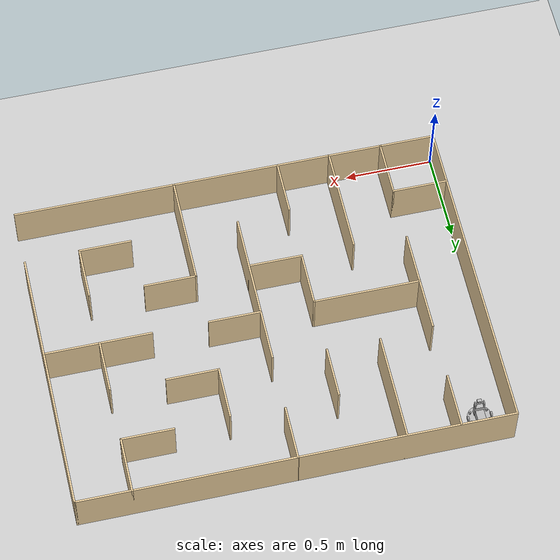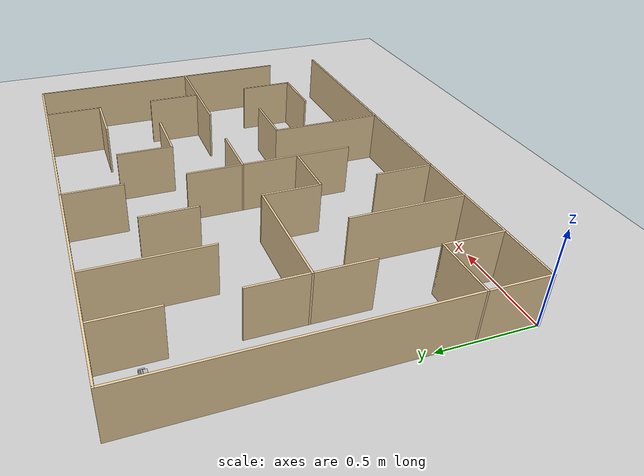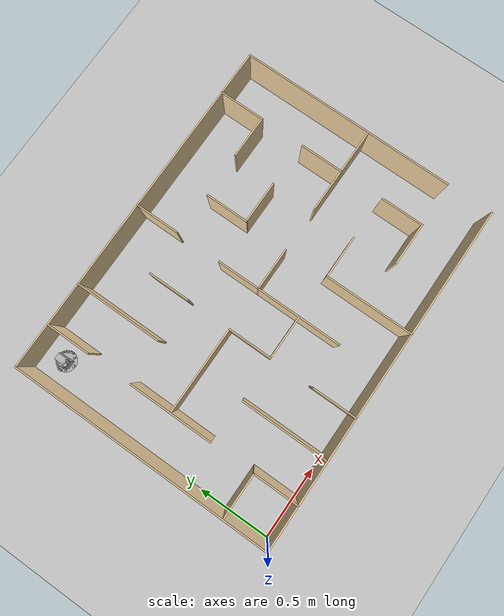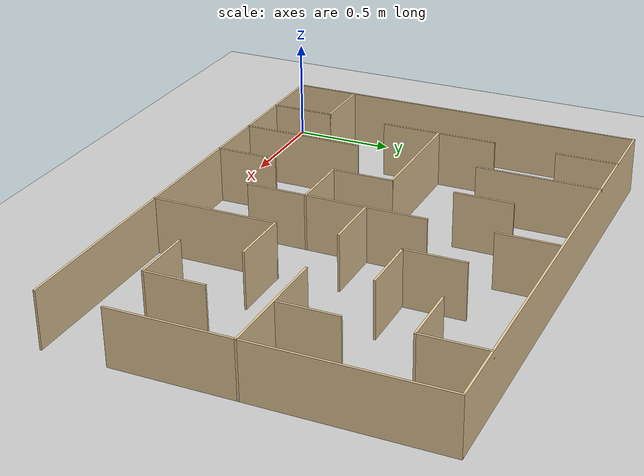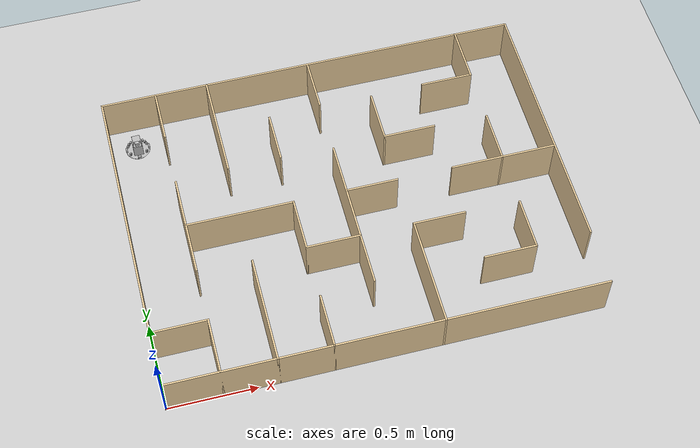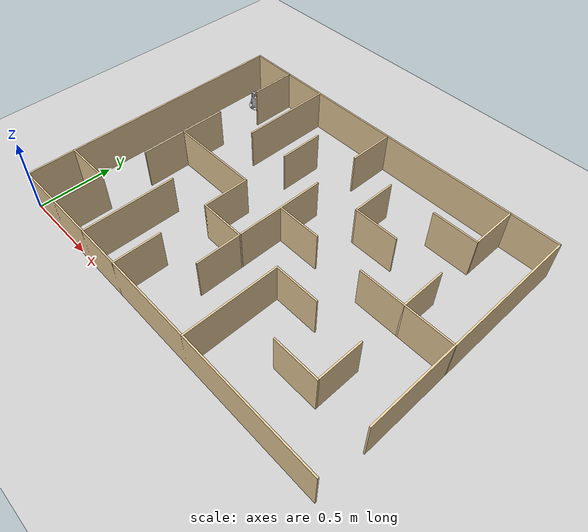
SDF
<?xml version="1.0" ?>
<sdf version="1.4">
  <world name="default">
    <scene>
      <ambient>0.5 0.5 0.5 1.0</ambient>
      <shadows>0</shadows>
    </scene>
    <include>
      <uri>model://ground_plane</uri>
    </include>
    <include>
      <uri>model://sun</uri>
    </include>
    <include>
      <uri>model://iti0201_robot</uri>
      <name>iti0201_robot</name>
      <pose>0.15 1.67 0 0 0 -1.57</pose> <!-- this is the robot's starting position, if you know where it should be, you can change this -->
    </include>

    <model name='newMap2'>
    <pose frame=''>1.21 0.91 0 0 -0 0</pose>
    <link name='Wall_101'>
      <collision name='Wall_101_Collision'>
        <geometry>
          <box>
            <size>1.51 0.01 0.28</size>
          </box>
        </geometry>
        <pose frame=''>0 0 0.14 0 -0 0</pose>
      </collision>
      <visual name='Wall_101_Visual'>
        <pose frame=''>0 0 0.14 0 -0 0</pose>
        <geometry>
          <box>
            <size>1.51 0.01 0.28</size>
          </box>
        </geometry>
        <material>
          <script>
            <uri>file://media/materials/scripts/gazebo.material</uri>
            <name>Gazebo/Grey</name>
          </script>
          <ambient>0.921569 0.807843 0.615686 1</ambient>
        </material>
        <meta>
          <layer>0</layer>
        </meta>
      </visual>
      <pose frame=''>1.21 0.16 0 0 0 -1.5708</pose>
    </link>
    <link name='Wall_106'>
      <collision name='Wall_106_Collision'>
        <geometry>
          <box>
            <size>2.43 0.01 0.28</size>
          </box>
        </geometry>
        <pose frame=''>0 0 0.14 0 -0 0</pose>
      </collision>
      <visual name='Wall_106_Visual'>
        <pose frame=''>0 0 0.14 0 -0 0</pose>
        <geometry>
          <box>
            <size>2.43 0.01 0.28</size>
          </box>
        </geometry>
        <material>
          <script>
            <uri>file://media/materials/scripts/gazebo.material</uri>
            <name>Gazebo/Grey</name>
          </script>
          <ambient>0.921569 0.807843 0.615686 1</ambient>
        </material>
        <meta>
          <layer>0</layer>
        </meta>
      </visual>
      <pose frame=''>0 -0.91 0 0 -0 0</pose>
    </link>
    <link name='Wall_108'>
      <collision name='Wall_108_Collision'>
        <geometry>
          <box>
            <size>1.83 0.01 0.28</size>
          </box>
        </geometry>
        <pose frame=''>0 0 0.14 0 -0 0</pose>
      </collision>
      <visual name='Wall_108_Visual'>
        <pose frame=''>0 0 0.14 0 -0 0</pose>
        <geometry>
          <box>
            <size>1.83 0.01 0.28</size>
          </box>
        </geometry>
        <material>
          <script>
            <uri>file://media/materials/scripts/gazebo.material</uri>
            <name>Gazebo/Grey</name>
          </script>
          <ambient>0.921569 0.807843 0.615686 1</ambient>
        </material>
        <meta>
          <layer>0</layer>
        </meta>
      </visual>
      <pose frame=''>-1.21 0 0 0 -0 1.5708</pose>
    </link>
    <link name='Wall_110'>
      <collision name='Wall_110_Collision'>
        <geometry>
          <box>
            <size>0.32 0.01 0.28</size>
          </box>
        </geometry>
        <pose frame=''>0 0 0.14 0 -0 0</pose>
      </collision>
      <visual name='Wall_110_Visual'>
        <pose frame=''>0 0 0.14 0 -0 0</pose>
        <geometry>
          <box>
            <size>0.32 0.01 0.28</size>
          </box>
        </geometry>
        <material>
          <script>
            <uri>file://media/materials/scripts/gazebo.material</uri>
            <name>Gazebo/Grey</name>
          </script>
          <ambient>0.921569 0.807843 0.615686 1</ambient>
        </material>
        <meta>
          <layer>0</layer>
        </meta>
      </visual>
      <pose frame=''>-1.055 -0.6 0 0 -0 0</pose>
    </link>
    <link name='Wall_112'>
      <collision name='Wall_112_Collision'>
        <geometry>
          <box>
            <size>0.3 0.01 0.28</size>
          </box>
        </geometry>
        <pose frame=''>0 0 0.14 0 -0 0</pose>
      </collision>
      <visual name='Wall_112_Visual'>
        <pose frame=''>0 0 0.14 0 -0 0</pose>
        <geometry>
          <box>
            <size>0.3 0.01 0.28</size>
          </box>
        </geometry>
        <material>
          <script>
            <uri>file://media/materials/scripts/gazebo.material</uri>
            <name>Gazebo/Grey</name>
          </script>
          <ambient>0.921569 0.807843 0.615686 1</ambient>
        </material>
        <meta>
          <layer>0</layer>
        </meta>
      </visual>
      <pose frame=''>0.445 -0.3 0 0 -0 0</pose>
    </link>
    <link name='Wall_114'>
      <collision name='Wall_114_Collision'>
        <geometry>
          <box>
            <size>0.3 0.01 0.28</size>
          </box>
        </geometry>
        <pose frame=''>0 0 0.14 0 -0 0</pose>
      </collision>
      <visual name='Wall_114_Visual'>
        <pose frame=''>0 0 0.14 0 -0 0</pose>
        <geometry>
          <box>
            <size>0.3 0.01 0.28</size>
          </box>
        </geometry>
        <material>
          <script>
            <uri>file://media/materials/scripts/gazebo.material</uri>
            <name>Gazebo/Grey</name>
          </script>
          <ambient>0.921569 0.807843 0.615686 1</ambient>
        </material>
        <meta>
          <layer>0</layer>
        </meta>
      </visual>
      <pose frame=''>0.145 0 0 0 -0 0</pose>
    </link>
    <link name='Wall_116'>
      <collision name='Wall_116_Collision'>
        <geometry>
          <box>
            <size>0.89 0.01 0.28</size>
          </box>
        </geometry>
        <pose frame=''>0 0 0.14 0 -0 0</pose>
      </collision>
      <visual name='Wall_116_Visual'>
        <pose frame=''>0 0 0.14 0 -0 0</pose>
        <geometry>
          <box>
            <size>0.89 0.01 0.28</size>
          </box>
        </geometry>
        <material>
          <script>
            <uri>file://media/materials/scripts/gazebo.material</uri>
            <name>Gazebo/Grey</name>
          </script>
          <ambient>0.921569 0.807843 0.615686 1</ambient>
        </material>
        <meta>
          <layer>0</layer>
        </meta>
      </visual>
      <pose frame=''>0 -0.15 0 0 0 -1.5708</pose>
    </link>
    <link name='Wall_118'>
      <collision name='Wall_118_Collision'>
        <geometry>
          <box>
            <size>0.31 0.01 0.28</size>
          </box>
        </geometry>
        <pose frame=''>0 0 0.14 0 -0 0</pose>
      </collision>
      <visual name='Wall_118_Visual'>
        <pose frame=''>0 0 0.14 0 -0 0</pose>
        <geometry>
          <box>
            <size>0.31 0.01 0.28</size>
          </box>
        </geometry>
        <material>
          <script>
            <uri>file://media/materials/scripts/gazebo.material</uri>
            <name>Gazebo/Grey</name>
          </script>
          <ambient>0.921569 0.807843 0.615686 1</ambient>
        </material>
        <meta>
          <layer>0</layer>
        </meta>
      </visual>
      <pose frame=''>-0.15 -0.3 0 0 -0 0</pose>
    </link>
    <link name='Wall_120'>
      <collision name='Wall_120_Collision'>
        <geometry>
          <box>
            <size>0.31 0.01 0.28</size>
          </box>
        </geometry>
        <pose frame=''>0 0 0.14 0 -0 0</pose>
      </collision>
      <visual name='Wall_120_Visual'>
        <pose frame=''>0 0 0.14 0 -0 0</pose>
        <geometry>
          <box>
            <size>0.31 0.01 0.28</size>
          </box>
        </geometry>
        <material>
          <script>
            <uri>file://media/materials/scripts/gazebo.material</uri>
            <name>Gazebo/Grey</name>
          </script>
          <ambient>0.921569 0.807843 0.615686 1</ambient>
        </material>
        <meta>
          <layer>0</layer>
        </meta>
      </visual>
      <pose frame=''>-0.3 -0.15 0 0 0 -1.5708</pose>
    </link>
    <link name='Wall_124'>
      <collision name='Wall_124_Collision'>
        <geometry>
          <box>
            <size>0.61 0.01 0.28</size>
          </box>
        </geometry>
        <pose frame=''>0 0 0.14 0 -0 0</pose>
      </collision>
      <visual name='Wall_124_Visual'>
        <pose frame=''>0 0 0.14 0 -0 0</pose>
        <geometry>
          <box>
            <size>0.61 0.01 0.28</size>
          </box>
        </geometry>
        <material>
          <script>
            <uri>file://media/materials/scripts/gazebo.material</uri>
            <name>Gazebo/Grey</name>
          </script>
          <ambient>0.921569 0.807843 0.615686 1</ambient>
        </material>
        <meta>
          <layer>0</layer>
        </meta>
      </visual>
      <pose frame=''>-0.6 0 0 0 -0 0</pose>
    </link>
    <link name='Wall_126'>
      <collision name='Wall_126_Collision'>
        <geometry>
          <box>
            <size>0.59 0.01 0.28</size>
          </box>
        </geometry>
        <pose frame=''>0 0 0.14 0 -0 0</pose>
      </collision>
      <visual name='Wall_126_Visual'>
        <pose frame=''>0 0 0.14 0 -0 0</pose>
        <geometry>
          <box>
            <size>0.59 0.01 0.28</size>
          </box>
        </geometry>
        <material>
          <script>
            <uri>file://media/materials/scripts/gazebo.material</uri>
            <name>Gazebo/Grey</name>
          </script>
          <ambient>0.921569 0.807843 0.615686 1</ambient>
        </material>
        <meta>
          <layer>0</layer>
        </meta>
      </visual>
      <pose frame=''>-0.9 0 0 0 0 -1.5708</pose>
    </link>
    <link name='Wall_60'>
      <collision name='Wall_60_Collision'>
        <geometry>
          <box>
            <size>0.3 0.01 0.28</size>
          </box>
        </geometry>
        <pose frame=''>0 0 0.14 0 -0 0</pose>
      </collision>
      <visual name='Wall_60_Visual'>
        <pose frame=''>0 0 0.14 0 -0 0</pose>
        <geometry>
          <box>
            <size>0.3 0.01 0.28</size>
          </box>
        </geometry>
        <material>
          <script>
            <uri>file://media/materials/scripts/gazebo.material</uri>
            <name>Gazebo/Grey</name>
          </script>
          <ambient>0.921569 0.807843 0.615686 1</ambient>
        </material>
        <meta>
          <layer>0</layer>
        </meta>
      </visual>
      <pose frame=''>0.755 -0.6 0 0 -0 3.14159</pose>
    </link>
    <link name='Wall_64'>
      <collision name='Wall_64_Collision'>
        <geometry>
          <box>
            <size>0.3 0.01 0.28</size>
          </box>
        </geometry>
        <pose frame=''>0 0 0.14 0 -0 0</pose>
      </collision>
      <visual name='Wall_64_Visual'>
        <pose frame=''>0 0 0.14 0 -0 0</pose>
        <geometry>
          <box>
            <size>0.3 0.01 0.28</size>
          </box>
        </geometry>
        <material>
          <script>
            <uri>file://media/materials/scripts/gazebo.material</uri>
            <name>Gazebo/Grey</name>
          </script>
          <ambient>0.921569 0.807843 0.615686 1</ambient>
        </material>
        <meta>
          <layer>0</layer>
        </meta>
      </visual>
      <pose frame=''>0.9 -0.455 0 0 0 -1.5708</pose>
    </link>
    <link name='Wall_66'>
      <collision name='Wall_66_Collision'>
        <geometry>
          <box>
            <size>0.3 0.01 0.28</size>
          </box>
        </geometry>
        <pose frame=''>0 0 0.14 0 -0 0</pose>
      </collision>
      <visual name='Wall_66_Visual'>
        <pose frame=''>0 0 0.14 0 -0 0</pose>
        <geometry>
          <box>
            <size>0.3 0.01 0.28</size>
          </box>
        </geometry>
        <material>
          <script>
            <uri>file://media/materials/scripts/gazebo.material</uri>
            <name>Gazebo/Grey</name>
          </script>
          <ambient>0.921569 0.807843 0.615686 1</ambient>
        </material>
        <meta>
          <layer>0</layer>
        </meta>
      </visual>
      <pose frame=''>0.9 0.145 0 0 0 -1.5708</pose>
    </link>
    <link name='Wall_68'>
      <collision name='Wall_68_Collision'>
        <geometry>
          <box>
            <size>0.61 0.01 0.28</size>
          </box>
        </geometry>
        <pose frame=''>0 0 0.14 0 -0 0</pose>
      </collision>
      <visual name='Wall_68_Visual'>
        <pose frame=''>0 0 0.14 0 -0 0</pose>
        <geometry>
          <box>
            <size>0.61 0.01 0.28</size>
          </box>
        </geometry>
        <material>
          <script>
            <uri>file://media/materials/scripts/gazebo.material</uri>
            <name>Gazebo/Grey</name>
          </script>
          <ambient>0.921569 0.807843 0.615686 1</ambient>
        </material>
        <meta>
          <layer>0</layer>
        </meta>
      </visual>
      <pose frame=''>0.91 0 0 0 -0 0</pose>
    </link>
    <link name='Wall_71'>
      <collision name='Wall_71_Collision'>
        <geometry>
          <box>
            <size>0.3 0.01 0.28</size>
          </box>
        </geometry>
        <pose frame=''>0 0 0.14 0 -0 0</pose>
      </collision>
      <visual name='Wall_71_Visual'>
        <pose frame=''>0 0 0.14 0 -0 0</pose>
        <geometry>
          <box>
            <size>0.3 0.01 0.28</size>
          </box>
        </geometry>
        <material>
          <script>
            <uri>file://media/materials/scripts/gazebo.material</uri>
            <name>Gazebo/Grey</name>
          </script>
          <ambient>0.921569 0.807843 0.615686 1</ambient>
        </material>
        <meta>
          <layer>0</layer>
        </meta>
      </visual>
      <pose frame=''>0.445 0.3 0 0 -0 0</pose>
    </link>
    <link name='Wall_75'>
      <collision name='Wall_75_Collision'>
        <geometry>
          <box>
            <size>0.3 0.01 0.28</size>
          </box>
        </geometry>
        <pose frame=''>0 0 0.14 0 -0 0</pose>
      </collision>
      <visual name='Wall_75_Visual'>
        <pose frame=''>0 0 0.14 0 -0 0</pose>
        <geometry>
          <box>
            <size>0.3 0.01 0.28</size>
          </box>
        </geometry>
        <material>
          <script>
            <uri>file://media/materials/scripts/gazebo.material</uri>
            <name>Gazebo/Grey</name>
          </script>
          <ambient>0.921569 0.807843 0.615686 1</ambient>
        </material>
        <meta>
          <layer>0</layer>
        </meta>
      </visual>
      <pose frame=''>0.3 0.445 0 0 0 -1.5708</pose>
    </link>
    <link name='Wall_78'>
      <collision name='Wall_78_Collision'>
        <geometry>
          <box>
            <size>0.3 0.01 0.28</size>
          </box>
        </geometry>
        <pose frame=''>0 0 0.14 0 -0 0</pose>
      </collision>
      <visual name='Wall_78_Visual'>
        <pose frame=''>0 0 0.14 0 -0 0</pose>
        <geometry>
          <box>
            <size>0.3 0.01 0.28</size>
          </box>
        </geometry>
        <material>
          <script>
            <uri>file://media/materials/scripts/gazebo.material</uri>
            <name>Gazebo/Grey</name>
          </script>
          <ambient>0.921569 0.807843 0.615686 1</ambient>
        </material>
        <meta>
          <layer>0</layer>
        </meta>
      </visual>
      <pose frame=''>0.755 0.6 0 0 -0 3.14159</pose>
    </link>
    <link name='Wall_80'>
      <collision name='Wall_80_Collision'>
        <geometry>
          <box>
            <size>0.62 0.01 0.28</size>
          </box>
        </geometry>
        <pose frame=''>0 0 0.14 0 -0 0</pose>
      </collision>
      <visual name='Wall_80_Visual'>
        <pose frame=''>0 0 0.14 0 -0 0</pose>
        <geometry>
          <box>
            <size>0.62 0.01 0.28</size>
          </box>
        </geometry>
        <material>
          <script>
            <uri>file://media/materials/scripts/gazebo.material</uri>
            <name>Gazebo/Grey</name>
          </script>
          <ambient>0.921569 0.807843 0.615686 1</ambient>
        </material>
        <meta>
          <layer>0</layer>
        </meta>
      </visual>
      <pose frame=''>0.3 -0.605 0 0 -0 1.5708</pose>
    </link>
    <link name='Wall_82'>
      <collision name='Wall_82_Collision'>
        <geometry>
          <box>
            <size>0.32 0.01 0.28</size>
          </box>
        </geometry>
        <pose frame=''>0 0 0.14 0 -0 0</pose>
      </collision>
      <visual name='Wall_82_Visual'>
        <pose frame=''>0 0 0.14 0 -0 0</pose>
        <geometry>
          <box>
            <size>0.32 0.01 0.28</size>
          </box>
        </geometry>
        <material>
          <script>
            <uri>file://media/materials/scripts/gazebo.material</uri>
            <name>Gazebo/Grey</name>
          </script>
          <ambient>0.921569 0.807843 0.615686 1</ambient>
        </material>
        <meta>
          <layer>0</layer>
        </meta>
      </visual>
      <pose frame=''>-0.9 -0.755 0 0 0 -1.5708</pose>
    </link>
    <link name='Wall_84'>
      <collision name='Wall_84_Collision'>
        <geometry>
          <box>
            <size>0.61 0.01 0.28</size>
          </box>
        </geometry>
        <pose frame=''>0 0 0.14 0 -0 0</pose>
      </collision>
      <visual name='Wall_84_Visual'>
        <pose frame=''>0 0 0.14 0 -0 0</pose>
        <geometry>
          <box>
            <size>0.61 0.01 0.28</size>
          </box>
        </geometry>
        <material>
          <script>
            <uri>file://media/materials/scripts/gazebo.material</uri>
            <name>Gazebo/Grey</name>
          </script>
          <ambient>0.921569 0.807843 0.615686 1</ambient>
        </material>
        <meta>
          <layer>0</layer>
        </meta>
      </visual>
      <pose frame=''>-0.6 -0.61 0 0 -0 1.5708</pose>
    </link>
    <link name='Wall_86'>
      <collision name='Wall_86_Collision'>
        <geometry>
          <box>
            <size>0.31 0.01 0.28</size>
          </box>
        </geometry>
        <pose frame=''>0 0 0.14 0 -0 0</pose>
      </collision>
      <visual name='Wall_86_Visual'>
        <pose frame=''>0 0 0.14 0 -0 0</pose>
        <geometry>
          <box>
            <size>0.31 0.01 0.28</size>
          </box>
        </geometry>
        <material>
          <script>
            <uri>file://media/materials/scripts/gazebo.material</uri>
            <name>Gazebo/Grey</name>
          </script>
          <ambient>0.921569 0.807843 0.615686 1</ambient>
        </material>
        <meta>
          <layer>0</layer>
        </meta>
      </visual>
      <pose frame=''>-0.3 -0.76 0 0 -0 1.5708</pose>
    </link>
    <link name='Wall_88'>
      <collision name='Wall_88_Collision'>
        <geometry>
          <box>
            <size>0.31 0.01 0.28</size>
          </box>
        </geometry>
        <pose frame=''>0 0 0.14 0 -0 0</pose>
      </collision>
      <visual name='Wall_88_Visual'>
        <pose frame=''>0 0 0.14 0 -0 0</pose>
        <geometry>
          <box>
            <size>0.31 0.01 0.28</size>
          </box>
        </geometry>
        <material>
          <script>
            <uri>file://media/materials/scripts/gazebo.material</uri>
            <name>Gazebo/Grey</name>
          </script>
          <ambient>0.921569 0.807843 0.615686 1</ambient>
        </material>
        <meta>
          <layer>0</layer>
        </meta>
      </visual>
      <pose frame=''>0 0.76 0 0 0 -1.5708</pose>
    </link>
    <link name='Wall_90'>
      <collision name='Wall_90_Collision'>
        <geometry>
          <box>
            <size>0.32 0.01 0.28</size>
          </box>
        </geometry>
        <pose frame=''>0 0 0.14 0 -0 0</pose>
      </collision>
      <visual name='Wall_90_Visual'>
        <pose frame=''>0 0 0.14 0 -0 0</pose>
        <geometry>
          <box>
            <size>0.32 0.01 0.28</size>
          </box>
        </geometry>
        <material>
          <script>
            <uri>file://media/materials/scripts/gazebo.material</uri>
            <name>Gazebo/Grey</name>
          </script>
          <ambient>0.921569 0.807843 0.615686 1</ambient>
        </material>
        <meta>
          <layer>0</layer>
        </meta>
      </visual>
      <pose frame=''>0.9 0.755 0 0 0 -1.5708</pose>
    </link>
    <link name='Wall_92'>
      <collision name='Wall_92_Collision'>
        <geometry>
          <box>
            <size>0.29 0.01 0.28</size>
          </box>
        </geometry>
        <pose frame=''>0 0 0.14 0 -0 0</pose>
      </collision>
      <visual name='Wall_92_Visual'>
        <pose frame=''>0 0 0.14 0 -0 0</pose>
        <geometry>
          <box>
            <size>0.29 0.01 0.28</size>
          </box>
        </geometry>
        <material>
          <script>
            <uri>file://media/materials/scripts/gazebo.material</uri>
            <name>Gazebo/Grey</name>
          </script>
          <ambient>0.921569 0.807843 0.615686 1</ambient>
        </material>
        <meta>
          <layer>0</layer>
        </meta>
      </visual>
      <pose frame=''>-0.3 0.45 0 0 0 -1.5708</pose>
    </link>
    <link name='Wall_94'>
      <collision name='Wall_94_Collision'>
        <geometry>
          <box>
            <size>0.61 0.01 0.28</size>
          </box>
        </geometry>
        <pose frame=''>0 0 0.14 0 -0 0</pose>
      </collision>
      <visual name='Wall_94_Visual'>
        <pose frame=''>0 0 0.14 0 -0 0</pose>
        <geometry>
          <box>
            <size>0.61 0.01 0.28</size>
          </box>
        </geometry>
        <material>
          <script>
            <uri>file://media/materials/scripts/gazebo.material</uri>
            <name>Gazebo/Grey</name>
          </script>
          <ambient>0.921569 0.807843 0.615686 1</ambient>
        </material>
        <meta>
          <layer>0</layer>
        </meta>
      </visual>
      <pose frame=''>-0.6 0.61 0 0 0 -1.5708</pose>
    </link>
    <link name='Wall_96'>
      <collision name='Wall_96_Collision'>
        <geometry>
          <box>
            <size>0.31 0.01 0.28</size>
          </box>
        </geometry>
        <pose frame=''>0 0 0.14 0 -0 0</pose>
      </collision>
      <visual name='Wall_96_Visual'>
        <pose frame=''>0 0 0.14 0 -0 0</pose>
        <geometry>
          <box>
            <size>0.31 0.01 0.28</size>
          </box>
        </geometry>
        <material>
          <script>
            <uri>file://media/materials/scripts/gazebo.material</uri>
            <name>Gazebo/Grey</name>
          </script>
          <ambient>0.921569 0.807843 0.615686 1</ambient>
        </material>
        <meta>
          <layer>0</layer>
        </meta>
      </visual>
      <pose frame=''>-0.9 0.76 0 0 0 -1.5708</pose>
    </link>
    <link name='Wall_98'>
      <collision name='Wall_98_Collision'>
        <geometry>
          <box>
            <size>2.43 0.01 0.28</size>
          </box>
        </geometry>
        <pose frame=''>0 0 0.14 0 -0 0</pose>
      </collision>
      <visual name='Wall_98_Visual'>
        <pose frame=''>0 0 0.14 0 -0 0</pose>
        <geometry>
          <box>
            <size>2.43 0.01 0.28</size>
          </box>
        </geometry>
        <material>
          <script>
            <uri>file://media/materials/scripts/gazebo.material</uri>
            <name>Gazebo/Grey</name>
          </script>
          <ambient>0.921569 0.807843 0.615686 1</ambient>
        </material>
        <meta>
          <layer>0</layer>
        </meta>
      </visual>
      <pose frame=''>0 0.91 0 0 -0 0</pose>
    </link>
    <static>1</static>
  </model>

  </world>
</sdf>

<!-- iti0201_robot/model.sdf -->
<sdf version='1.4'>
  	<model name="iti0201_robot">
  		<static>false</static>

      <!-- LINK 1: Chassis, connect wheels and base to this. -->
      <link name="chassis">
        <pose>0 0 0.0152 0 0 0</pose>
      </link>

      <joint type="fixed" name="chassis_to_base">
        <pose>0 0 0 0 0 0</pose>
        <child>base</child>
        <parent>chassis</parent>
        <axis>
          <xyz>0 0 0</xyz>
        </axis>
      </joint>

      <!-- LINK 2: Base, contains caster wheels, base, brainbox and base for camera stand. -->
  		<link name='base'>
        <pose>0 0 .006 0 0 0</pose>

          <inertial>
            <mass>50</mass>
          </inertial>

          <collision name='base_collision'>
            <geometry>
              <cylinder>
                <radius>.069912</radius>
                <length>0.001591</length>
              </cylinder>
            </geometry>
          </collision>

          <visual name='base_visual'>
            <geometry>
              <cylinder>
                <radius>.069912</radius>
                <length>0.001591</length>
              </cylinder>
            </geometry>
          </visual>

          <collision name="brainbox_collision">
            <pose>-0.022 0 0.02641535 0 0 0</pose>
            <geometry>
              <box>
                <size>.077304 .0468221 .0512397</size>
              </box>
            </geometry>
          </collision>

          <visual name="brainbox_visual">
            <pose>-0.022 0 0.02641535 0 0 0</pose>
            <geometry>
              <box>
                <size>.077304 .0468221 .0512397</size>
              </box>
            </geometry>
          </visual>

          <collision name="camera_stand_collision">
            <pose>0.02940475 0 0.0402758 0 0 0</pose>
            <geometry>
              <box>
                <size>.0255021 .0553499 .0789606</size>
              </box>
            </geometry>
          </collision>

          <visual name="camera_stand_visual">
            <pose>0.02940475 0 0.0402758 0 0 0</pose>
            <geometry>
              <box>
                <size>.0255021 .0553499 .0789606</size>
              </box>
            </geometry>
          </visual>

          <collision name="camera_stand_right_wall_collision">
          <pose>0.02940475 -0.02467495 0.0970561 0 0 0</pose>
            <geometry>
              <box>
                <size>.0255021 .006 .0346</size>
              </box>
            </geometry>
          </collision>

          <visual name="camera_stand_right_wall_visual">
          <pose>0.02940475 -0.02467495 0.0970561 0 0 0</pose>
            <geometry>
              <box>
                <size>.0255021 .006 .0346</size>
              </box>
            </geometry>
          </visual>

          <collision name="camera_stand_left_wall_collision">
          <pose>0.02940475 0.02467495 0.0970561 0 0 0</pose>
            <geometry>
              <box>
                <size>.0255021 .006 .0346</size>
              </box>
            </geometry>
          </collision>

          <visual name="camera_stand_left_wall_visual">
          <pose>0.02940475 0.02467495 0.0970561 0 0 0</pose>
            <geometry>
              <box>
                <size>.0255021 .006 .0346</size>
              </box>
            </geometry>
          </visual>

          <collision name='front_caster_collision'>
            <pose>0.035 0 -0.001 0 0 0</pose>
            <geometry>
                <sphere>
                <radius>.004648</radius>
              </sphere>
            </geometry>

            <surface>
              <friction>
                <ode>
                  <mu>0</mu>
                  <mu2>0</mu2>
                  <slip1>1.0</slip1>
                  <slip2>1.0</slip2>
                </ode>
              </friction>
            </surface>
          </collision>

          <visual name='front_caster_visual'>
            <pose>0.035 0 -0.001 0 0 0</pose>
            <geometry>
              <sphere>
                <radius>.004648</radius>
              </sphere>
            </geometry>
          </visual>

          <collision name='rear_caster_collision'>
            <pose>-0.035 0 -0.001 0 0 0</pose>
            <geometry>
                <sphere>
                <radius>.004648</radius>
              </sphere>
            </geometry>

            <surface>
              <friction>
                <ode>
                  <mu>0</mu>
                  <mu2>0</mu2>
                  <slip1>1.0</slip1>
                  <slip2>1.0</slip2>
                </ode>
              </friction>
            </surface>
          </collision>

          <visual name='rear_caster_visual'>
            <pose>-0.035 0 -0.001 0 0 0</pose>
            <geometry>
              <sphere>
                <radius>.004648</radius>
              </sphere>
            </geometry>
          </visual>
      </link>

      <!-- LINKS 3-11: Infrared sensors. -->
      <link name="front_right_45deg_ir">
        <pose>0.0326151 -0.0470558 0.0167955 0 0 0.78535</pose>
        <collision name="collision">
          <geometry>
            <box>
              <size>.01 .01 .02</size>
            </box>
          </geometry>
        </collision>
        <visual name="visual">
          <geometry>
            <box>
              <size>.01 .01 .02</size>
            </box>
          </geometry>
        </visual>
      </link>

      <joint type="fixed" name="front_right_45deg_ir_to_base">
        <pose>0 0 0 0 0 0</pose>
        <child>front_right_45deg_ir</child>
        <parent>base</parent>
      </joint>

      <link name="front_middle_ir">
        <pose>0.059312 0 0.0117955 0 0 0</pose>
        <collision name="collision">
          <geometry>
            <box>
              <size>.01 .02 .01</size>
            </box>
          </geometry>
        </collision>
        <visual name="visual">
          <geometry>
            <box>
              <size>.01 .02 .01</size>
            </box>
          </geometry>
        </visual>
      </link>

      <joint type="fixed" name="front_middle_ir_to_base">
        <pose>0 0 0 0 0 0</pose>
        <child>front_middle_ir</child>
        <parent>base</parent>
      </joint>

      <link name="front_left_45deg_ir">
        <pose>0.0326151 0.0470558 0.0167955 0 0 0.78535</pose>
        <collision name="collision">
          <geometry>
            <box>
              <size>.01 .01 .02</size>
            </box>
          </geometry>
        </collision>
        <visual name="visual">
          <geometry>
            <box>
              <size>.01 .01 .02</size>
            </box>
          </geometry>
        </visual>
      </link>

      <joint type="fixed" name="front_left_45deg_ir_to_base">
        <pose>0 0 0 0 0 0</pose>
        <child>front_left_45deg_ir</child>
        <parent>base</parent>
      </joint>

      <link name="rear_right_90deg_ir">
        <pose>-0.0225688 -0.054749 0.014341 0 0 0</pose>
        <collision name="collision">
          <geometry>
            <box>
              <size>.008 .012 .0135</size>
            </box>
          </geometry>
        </collision>
        <visual name="visual">
          <geometry>
            <box>
              <size>.008 .012 .0135</size>
            </box>
          </geometry>
        </visual>
      </link>

      <joint type="fixed" name="rear_right_90deg_ir_to_base">
        <pose>0 0 0 0 0 0</pose>
        <child>rear_right_90deg_ir</child>
        <parent>base</parent>
      </joint>

      <link name="rear_right_45deg_ir">
        <pose>-0.037845 -0.046812 0.014341 0 0 -0.78535</pose>
        <collision name="collision">
          <geometry>
            <box>
              <size>.008 .012 .0135</size>
            </box>
          </geometry>
        </collision>
        <visual name="visual">
          <geometry>
            <box>
              <size>.008 .012 .0135</size>
            </box>
          </geometry>
        </visual>
      </link>

      <joint type="fixed" name="rear_right_45deg_ir_to_base">
        <pose>0 0 0 0 0 0</pose>
        <child>rear_right_45deg_ir</child>
        <parent>base</parent>
      </joint>

      <link name="rear_right_straight_ir">
        <pose>-0.0501109 -0.035473 0.014341 0 0 1.5707</pose>
        <collision name="collision">
          <geometry>
            <box>
              <size>.008 .012 .0135</size>
            </box>
          </geometry>
        </collision>
        <visual name="visual">
          <geometry>
            <box>
              <size>.008 .012 .0135</size>
            </box>
          </geometry>
        </visual>
      </link>

      <joint type="fixed" name="rear_right_straight_ir_to_base">
        <pose>0 0 0 0 0 0</pose>
        <child>rear_right_straight_ir</child>
        <parent>base</parent>
      </joint>

      <link name="rear_left_90deg_ir">
        <pose>-0.0225688 0.054749 0.014341 0 0 0</pose>
        <collision name="collision">
          <geometry>
            <box>
              <size>.008 .012 .0135</size>
            </box>
          </geometry>
        </collision>
        <visual name="visual">
          <geometry>
            <box>
              <size>.008 .012 .0135</size>
            </box>
          </geometry>
        </visual>
      </link>

      <joint type="fixed" name="rear_left_90deg_ir_to_base">
        <pose>0 0 0 0 0 0</pose>
        <child>rear_left_90deg_ir</child>
        <parent>base</parent>
      </joint>

      <link name="rear_left_45deg_ir">
        <pose>-0.037845 0.046812 0.014341 0 0 0.78535</pose>
        <collision name="collision">
          <geometry>
            <box>
              <size>.008 .012 .0135</size>
            </box>
          </geometry>
        </collision>
        <visual name="visual">
          <geometry>
            <box>
              <size>.008 .012 .0135</size>
            </box>
          </geometry>
        </visual>
      </link>

      <joint type="fixed" name="rear_left_45deg_ir_to_base">
        <pose>0 0 0 0 0 0</pose>
        <child>rear_left_45deg_ir</child>
        <parent>base</parent>
      </joint>

      <link name="rear_left_straight_ir">
        <pose>-0.0501109 0.035473 0.014341 0 0 1.5707</pose>
        <collision name="collision">
          <geometry>
            <box>
              <size>.008 .012 .0135</size>
            </box>
          </geometry>
        </collision>
        <visual name="visual">
          <geometry>
            <box>
              <size>.008 .012 .0135</size>
            </box>
          </geometry>
        </visual>
      </link>

      <joint type="fixed" name="rear_left_straight_ir_to_base">
        <pose>0 0 0 0 0 0</pose>
        <child>rear_left_straight_ir</child>
        <parent>base</parent>
      </joint>

      <!-- LINKS 12-17: Line following sensors. -->
      <link name="right_side_first_line_sensor_from_middle">
        <pose>-0.06289935 -0.005 0.0044545 0 0 0</pose>
        <collision name="collision">
          <geometry>
            <box>
              <size>.0025 .0035 .0015</size>
            </box>
          </geometry>
        </collision>
        <visual name="visual">
          <geometry>
            <box>
              <size>.0025 .0035 .0015</size>
            </box>
          </geometry>
        </visual>
      </link>

      <joint type="fixed" name="right_side_first_line_sensor_from_middle_to_base">
        <pose>0 0 0 0 0 0</pose>
        <child>right_side_first_line_sensor_from_middle</child>
        <parent>base</parent>
      </joint>

      <link name="left_side_first_line_sensor_from_middle">
        <pose>-0.06289935 0.005 0.0044545 0 0 0</pose>
        <collision name="collision">
          <geometry>
            <box>
              <size>.0025 .0035 .0015</size>
            </box>
          </geometry>
        </collision>
        <visual name="visual">
          <geometry>
            <box>
              <size>.0025 .0035 .0015</size>
            </box>
          </geometry>
        </visual>
      </link>

      <joint type="fixed" name="left_side_first_line_sensor_from_middle_to_base">
        <pose>0 0 0 0 0 0</pose>
        <child>left_side_first_line_sensor_from_middle</child>
        <parent>base</parent>
      </joint>

      <link name="right_side_second_line_sensor_from_middle">
        <pose>-0.06289935 -0.015 0.0044545 0 0 0</pose>
        <collision name="collision">
          <geometry>
            <box>
              <size>.0025 .0035 .0015</size>
            </box>
          </geometry>
        </collision>
        <visual name="visual">
          <geometry>
            <box>
              <size>.0025 .0035 .0015</size>
            </box>
          </geometry>
        </visual>
      </link>

      <joint type="fixed" name="right_side_second_line_sensor_from_middle_to_base">
        <pose>0 0 0 0 0 0</pose>
        <child>right_side_second_line_sensor_from_middle</child>
        <parent>base</parent>
      </joint>

      <link name="left_side_second_line_sensor_from_middle">
        <pose>-0.06289935 0.015 0.0044545 0 0 0</pose>
        <collision name="collision">
          <geometry>
            <box>
              <size>.0025 .0035 .0015</size>
            </box>
          </geometry>
        </collision>
        <visual name="visual">
          <geometry>
            <box>
              <size>.0025 .0035 .0015</size>
            </box>
          </geometry>
        </visual>
      </link>

      <joint type="fixed" name="left_side_second_line_sensor_from_middle_to_base">
        <pose>0 0 0 0 0 0</pose>
        <child>left_side_second_line_sensor_from_middle</child>
        <parent>base</parent>
      </joint>

      <link name="right_side_third_line_sensor_from_middle">
        <pose>-0.05410292 -0.035 0.0044545 0 0 0</pose>
        <collision name="collision">
          <geometry>
            <box>
              <size>.0025 .0035 .0015</size>
            </box>
          </geometry>
        </collision>
        <visual name="visual">
          <geometry>
            <box>
              <size>.0025 .0035 .0015</size>
            </box>
          </geometry>
        </visual>
      </link>

      <joint type="fixed" name="right_side_third_line_sensor_from_middle_to_base">
        <pose>0 0 0 0 0 0</pose>
        <child>right_side_third_line_sensor_from_middle</child>
        <parent>base</parent>
      </joint>

      <link name="left_side_third_line_sensor_from_middle">
        <pose>-0.05410292 0.035 0.0044545 0 0 0</pose>
        <collision name="collision">
          <geometry>
            <box>
              <size>.0025 .0035 .0015</size>
            </box>
          </geometry>
        </collision>
        <visual name="visual">
          <geometry>
            <box>
              <size>.0025 .0035 .0015</size>
            </box>
          </geometry>
        </visual>
      </link>

      <joint type="fixed" name="left_side_third_line_sensor_from_middle_to_base">
        <pose>0 0 0 0 0 0</pose>
        <child>left_side_third_line_sensor_from_middle</child>
        <parent>base</parent>
      </joint>

      <!-- LINKS 18-19: Camera. -->
      <link name="camera_stand_pole">
        <pose>0.02940475 0 0.1165341 0 1.5707 1.5707</pose>
        <collision name="collision">
          <geometry>
            <cylinder>
              <radius>.003822</radius>
              <length>.0433499</length>
            </cylinder>
          </geometry>
        </collision>
        <visual name="visual">
          <geometry>
            <cylinder>
              <radius>.003822</radius>
              <length>.0433499</length>
            </cylinder>
          </geometry>
        </visual>
      </link>

      <joint type="fixed" name="camera_stand_pole_to_base">
        <pose>0 0 0 0 0 0</pose>
        <child>camera_stand_pole</child>
        <parent>base</parent>
      </joint>

      <link name="camera">
        <pose>0.04140475 0 0.1168561 0 1.5707 0</pose>
        <collision name="collision">
          <geometry>
            <box>
              <size>.024 .024 .017</size>
            </box>
          </geometry>
        </collision>
        <visual name="visual">
          <geometry>
            <box>
              <size>.024 .024 .017</size>
            </box>
          </geometry>
        </visual>
      </link>

      <joint type="fixed" name="camera">
        <pose>0 0 0 0 0 0</pose>
        <child>camera</child>
        <parent>camera_stand_pole</parent>
      </joint>

      <!-- LINKS 20-21: Wheels. -->
     	<link name="right_wheel">
        <pose>0 -0.0655005 0.0152 0 1.5707 1.5707</pose>
        <collision name="collision">
          <geometry>
            <cylinder>
              <radius>.0152</radius>
              <length>.009</length>
            </cylinder>
          </geometry>

          <surface>
            <friction>
               <ode>
                  <!-- wheel friction coefficient -->
                  <mu>0.6</mu>
                  <!-- floor friction coefficient -->
                  <mu2>0.6</mu2>
               </ode>
            </friction>
          </surface>
        </collision>

        <inertial>
          <!-- don't know the real mass -->
          <mass>2</mass>
            <inertia>
              <!-- https://en.wikipedia.org/wiki/List_of_moments_of_inertia -->
              <ixx>0.00012902</ixx>
              <iyy>0.00012902</iyy>
              <izz>0.00023104</izz>
            </inertia>
        </inertial>

        <visual name="visual">
          <geometry>
            <cylinder>
              <radius>.0152</radius>
              <length>.009</length>
            </cylinder>
          </geometry>
        </visual>
    	</link>

      <joint type="revolute" name="right_wheel_hinge">
        <pose>0 0 -0.03 0 0 0</pose>
        <child>right_wheel</child>
        <parent>chassis</parent>
        <axis>
          <xyz>0 1 0</xyz>
        </axis>
      </joint>

    	<link name="left_wheel">
        <pose>0 0.0655005 0.0152 0 1.5707 1.5707</pose>
        <collision name="collision">
          <geometry>
            <cylinder>
              <radius>.0152</radius>
              <length>.009</length>
            </cylinder>
          </geometry>

          <surface>
            <friction>
               <ode>
                  <!-- wheel friction coefficient -->
                  <mu>0.6</mu>
                  <!-- floor friction coefficient -->
                  <mu2>0.6</mu2>
               </ode>
            </friction>
          </surface>
        </collision>

        <inertial>
          <!-- don't know the real mass -->
          <mass>2</mass>
            <inertia>
              <!-- https://en.wikipedia.org/wiki/List_of_moments_of_inertia -->
              <ixx>0.00012902</ixx>
              <iyy>0.00012902</iyy>
              <izz>0.00023104</izz>
            </inertia>
        </inertial>

        <visual name="visual">
          <geometry>
            <cylinder>
              <radius>.0152</radius>
              <length>.009</length>
            </cylinder>
          </geometry>
        </visual>
      </link>

      <joint type="revolute" name="left_wheel_hinge">
        <pose>0 0 0.03 0 0 0</pose>
        <child>left_wheel</child>
        <parent>chassis</parent>
        <axis>
          <xyz>0 1 0</xyz>
        </axis>
      </joint>
      <plugin name="wheel_plugin" filename="libwheel_plugin.so"/>
  </model>
</sdf>
